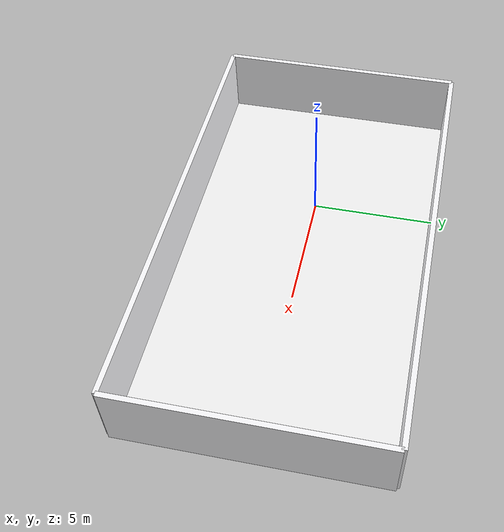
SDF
<?xml version="1.0"?>
<sdf version="1.9">
  <world name="target_distance_calibration">

    <plugin
      filename="gz-sim-physics-system"
      name="gz::sim::systems::Physics"/>
    <plugin
      filename="gz-sim-user-commands-system"
      name="gz::sim::systems::UserCommands"/>
    <plugin
      filename="gz-sim-scene-broadcaster-system"
      name="gz::sim::systems::SceneBroadcaster"/>
    <plugin
      filename="gz-sim-sensors-system"
      name="gz::sim::systems::Sensors">
      <render_engine>ogre2</render_engine>
    </plugin>
    <plugin name="gz::sim::systems::Imu" filename="libgz-sim-imu-system.so"/>
    <plugin name="gz::sim::systems::NavSat" filename="libgz-sim-navsat-system.so"/>

    <gravity>0 0 -9.81</gravity>

    <scene>
      <ambient>0.78 0.78 0.78 1</ambient>
      <background>0.98 0.99 1.0 1</background>
      <shadows>true</shadows>
    </scene>

    <physics name="default_physics" type="ode">
      <max_step_size>0.002</max_step_size>
      <real_time_factor>1.0</real_time_factor>
      <real_time_update_rate>500</real_time_update_rate>
    </physics>

    <light type="directional" name="sun">
      <cast_shadows>true</cast_shadows>
      <pose>0 0 12 0 0 0</pose>
      <diffuse>0.95 0.95 0.95 1</diffuse>
      <specular>0.2 0.2 0.2 1</specular>
      <direction>-0.2 0.15 -1</direction>
    </light>

    <model name="calibration_floor">
      <static>true</static>
      <pose>3 0 0 0 0 0</pose>
      <link name="link">
        <collision name="collision">
          <geometry>
            <box><size>18 10 0.1</size></box>
          </geometry>
        </collision>
        <visual name="visual">
          <geometry>
            <box><size>18 10 0.1</size></box>
          </geometry>
          <material>
            <ambient>0.93 0.93 0.93 1</ambient>
            <diffuse>0.96 0.96 0.96 1</diffuse>
          </material>
        </visual>
      </link>
    </model>

    <model name="wall_west">
      <static>true</static>
      <pose>-6 0 1.4 0 0 0</pose>
      <link name="link">
        <collision name="collision">
          <geometry><box><size>0.2 10 2.8</size></box></geometry>
        </collision>
        <visual name="visual">
          <geometry><box><size>0.2 10 2.8</size></box></geometry>
          <material>
            <ambient>0.99 0.99 1.0 1</ambient>
            <diffuse>0.99 0.99 1.0 1</diffuse>
          </material>
        </visual>
      </link>
    </model>

    <model name="wall_east">
      <static>true</static>
      <pose>12 0 1.4 0 0 0</pose>
      <link name="link">
        <collision name="collision">
          <geometry><box><size>0.2 10 2.8</size></box></geometry>
        </collision>
        <visual name="visual">
          <geometry><box><size>0.2 10 2.8</size></box></geometry>
          <material>
            <ambient>0.99 0.99 1.0 1</ambient>
            <diffuse>0.99 0.99 1.0 1</diffuse>
          </material>
        </visual>
      </link>
    </model>

    <model name="wall_north">
      <static>true</static>
      <pose>3 5 1.4 0 0 0</pose>
      <link name="link">
        <collision name="collision">
          <geometry><box><size>18 0.2 2.8</size></box></geometry>
        </collision>
        <visual name="visual">
          <geometry><box><size>18 0.2 2.8</size></box></geometry>
          <material>
            <ambient>0.99 0.99 1.0 1</ambient>
            <diffuse>0.99 0.99 1.0 1</diffuse>
          </material>
        </visual>
      </link>
    </model>

    <model name="wall_south">
      <static>true</static>
      <pose>3 -5 1.4 0 0 0</pose>
      <link name="link">
        <collision name="collision">
          <geometry><box><size>18 0.2 2.8</size></box></geometry>
        </collision>
        <visual name="visual">
          <geometry><box><size>18 0.2 2.8</size></box></geometry>
          <material>
            <ambient>0.99 0.99 1.0 1</ambient>
            <diffuse>0.99 0.99 1.0 1</diffuse>
          </material>
        </visual>
      </link>
    </model>

  </world>
</sdf>
